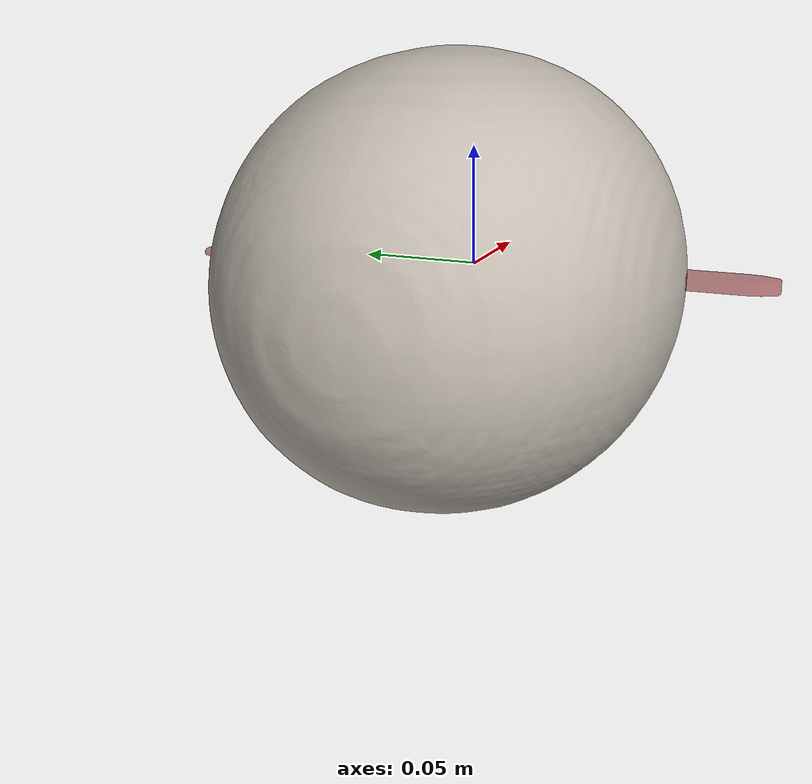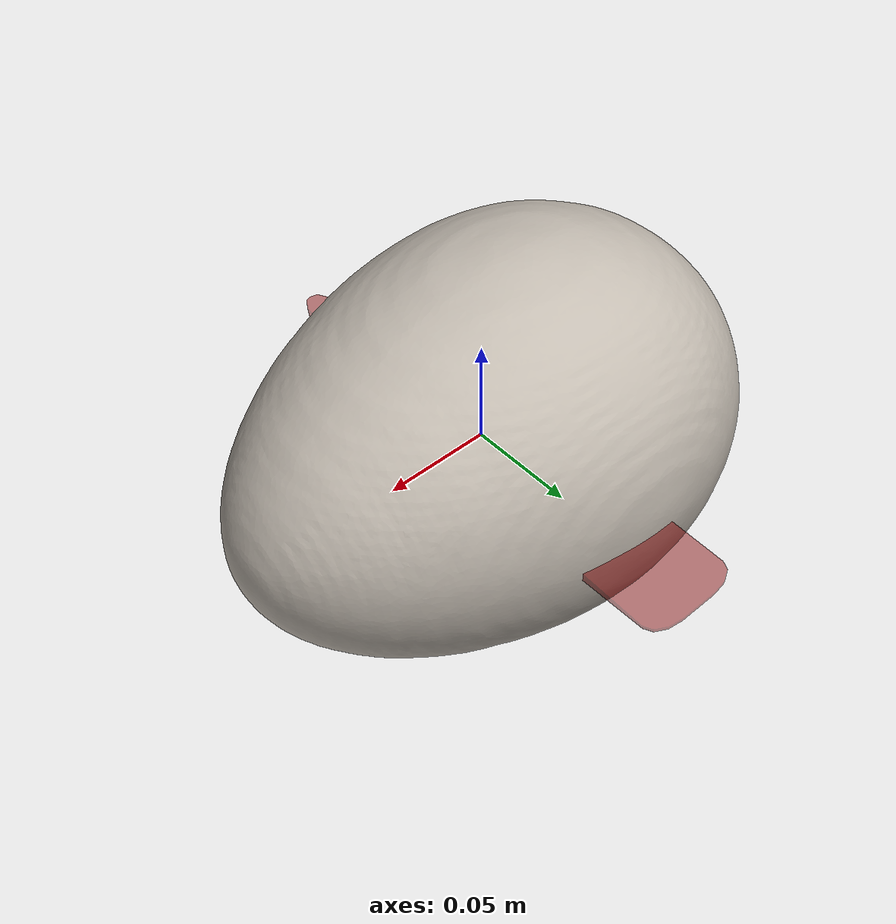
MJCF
<mujoco model="spatula_10">
  <asset>
    <mesh file="visual/model_normalized_0.obj" name="model_normalized_0_vis" scale="0.25 0.25 0.25" refquat="0.5000000000000007 -0.5000000000000006 -0.5000000000000007 -0.5000000000000007"/>
    <texture type="2d" name="image0" file="visual/image0.png"/>
    <material name="lambert3.003" texture="image0" specular="0.55" shininess="0.45"/>
    <mesh file="collision/collision_mesh_collision_0.obj" name="spatula_collision_mesh_0" scale="0.25 0.25 0.25" refquat="0.5000000000000007 -0.5000000000000006 -0.5000000000000007 -0.5000000000000007"/>
    <mesh file="collision/collision_mesh_collision_1.obj" name="spatula_collision_mesh_1" scale="0.25 0.25 0.25" refquat="0.5000000000000007 -0.5000000000000006 -0.5000000000000007 -0.5000000000000007"/>
  </asset>
  <default>
    <default class="region">
      <geom group="1" conaffinity="0" contype="0" rgba="0 1 0 0"/>
    </default>
    <default class="collision">
      <geom group="0" rgba="0.5 0 0 0.5" density="1000.0"/>
    </default>
  </default>
  <worldbody>
    <body>
      <body name="object">
        <geom solimp="0.998 0.998 0.001" solref="0.001 1" density="100" friction="0.95 0.3 0.1" type="mesh" mesh="model_normalized_0_vis" conaffinity="0" contype="0" group="1" material="lambert3.003"/>
        <geom class="region" name="reg_bbox" type="box" pos="6.987462639745923e-09 -5.260906987825109e-11 0.0" size="0.023381796106336266 0.12499999264902048 0.0025536637245376407"/>
        <geom mesh="spatula_collision_mesh_0" type="mesh" class="collision"/>
        <geom mesh="spatula_collision_mesh_1" type="mesh" class="collision"/>
      </body>
    </body>
  </worldbody>
  <custom>
    <text name="material_gt" data="metal_plastic"/>
  </custom>
</mujoco>
